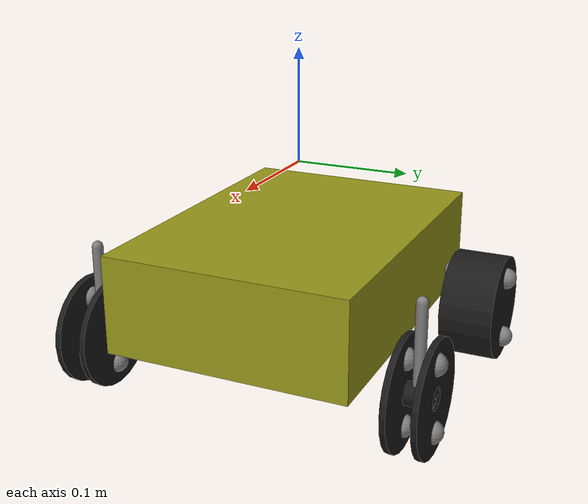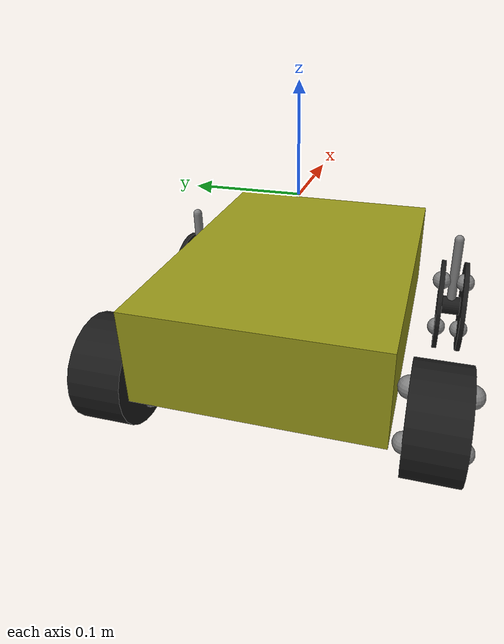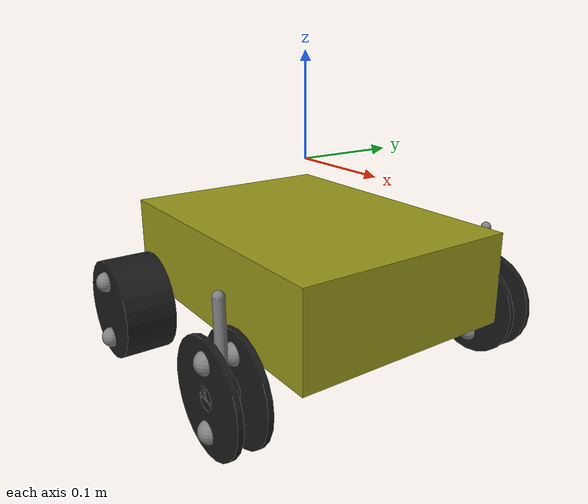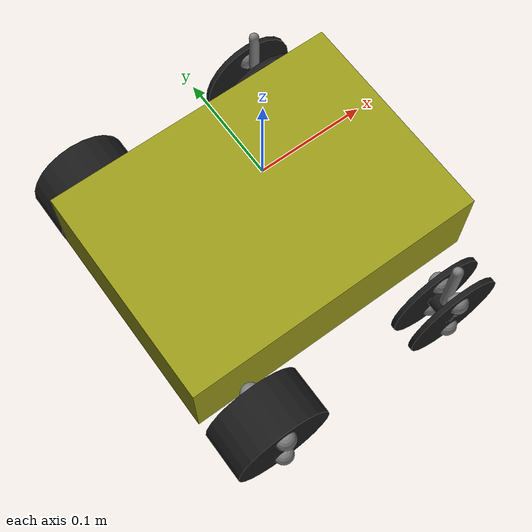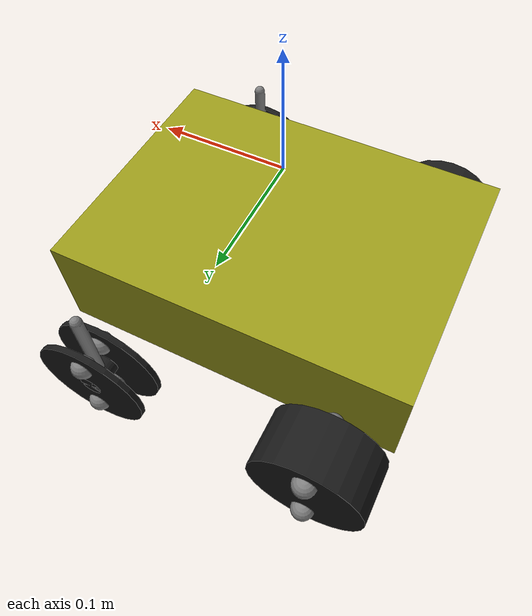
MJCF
<mujoco model="rover4We (v0.2)">

    <compiler inertiafromgeom="true" angle="degree"/>
	<option	timestep="0.02" gravity="0 0 -9.81"/>

	<asset>
		<material name="MatWheel" specular="1" rgba=".1 .1 .1 1"/>
		<material name="MatBody" specular="1" rgba=".6 .6 .1 1"/>
	</asset>

	<default>
		<!--making every geom collidable. expect those that dont are default-->
		<geom contype="1" conaffinity="1"/>
	</default>

	<default class="acker_solver_param">
		<!--solver impedance and reference(?) for ackerman equality constraint-->
		<!--default solimp: "0.900 0.950 0.001"-->
		<!--default solref: "0.020 1.000"-->
		<!--solref: (timeconst, dampratio)
			b = 2 / (dmax * timeconst)
			k = d(r) / (dmax * dmax * timeconst * timeconst * dampratio * dampratio)
		-->
		<equality solimp="0.9950 0.9990 0.0001" solref="0.0100 0.7500"/>
	</default>

	<visual>
		<headlight active="1"/>
		<scale camera=".5"/>
		<map znear="0.001" zfar="1000"/>
	</visual>

    <worldbody>
		<body name="rover" pos="0 0 0">

			<light name="lamp" active="true" directional="true" cutoff="4" exponent="20" diffuse="1 1 1" specular="0 0 0" pos="0 0 2.5" dir="0 0 -1 "/>

			<joint name="centroid" type="free" pos="0 0 0"/>
            <geom name="rover-body" type="box" pos="0 0 -0.1" size="0.15 0.11 0.044" mass="12" material="MatBody"/>
            <body name="r-l-wheel" pos="-0.1 0.12 -0.15">
                <joint name="r-l-drive-hinge" type="hinge" pos="0 0 0" axis="0 1 0" damping="0.01" />
                <geom type="cylinder" size=".05" fromto="0 0 0 0 0.05 0" mass=".125" material="MatWheel" condim="4"/>
				<site size=".01" pos="0 .05 .03"/>
				<site size=".01" pos="0 .05 -.03"/>
				<site size=".01" pos="0 0 .03"/>
				<site size=".01" pos="0 0 -.03"/>
            </body>
            <body name="r-r-wheel" pos="-0.1 -0.12 -0.15">
                <joint name="r-r-drive-hinge" type="hinge" pos="0 0 0" axis="0 1 0" damping="0.01"/>
                <geom type="cylinder" size=".05" fromto="0 0 0 0 -0.05 0" mass=".125" material="MatWheel" condim="4"/>
				<site size=".01" pos="0 -.05 .03"/>
				<site size=".01" pos="0 -.05 -.03"/>
				<site size=".01" pos="0 0 .03"/>
				<site size=".01" pos="0 0 -.03"/>
            </body>
			<body name="ghost-steer-wheel" pos="0 0 -0.1">
                <joint name="ghost-steer-hinge" type="hinge" pos="0 0 0" axis="0 0 1" limited="true" range="-17 17" damping="0"/>
				<geom type="cylinder" size=".01 .01" axisangle="1 0 0 90" contype="2" conaffinity="2" mass="0.002"/>
			</body>
			<body name="f-l-wheel" pos=".1 0.15 -.15">
				<geom type="capsule" size = ".005" fromto="0 0 0 0 0 .08" contype="2" conaffinity="2"/>
				<joint name="f-l-steer-hinge" type="hinge" pos="0 0 0" axis="0 0 1" damping="0.01" limited="true" range="-40 40"/>
				<body>
					<geom type="cylinder" size=".01" fromto="0 -.015 0 0 0.015 0" mass=".125" material="MatWheel"/>
					<body>
						<joint name="f-l-drive-hinge-1" type="hinge" pos="0 0 0" axis="0 1 0" damping="0.01"/>
						<geom type="cylinder" size=".05" fromto="0 -.015 0 0 -0.010 0" mass=".125" material="MatWheel" condim="4"/>
					<site size=".01" pos="0 -0.0125  0.03"/>
					<site size=".01" pos="0 -0.0125 -0.03"/>
					</body>
					<body>
						<joint name="f-l-drive-hinge-2" type="hinge" pos="0 0 0" axis="0 1 0" damping="0.01"/>
						<geom type="cylinder" size=".05" fromto="0 .010 0 0 0.015 0" mass=".125" material="MatWheel" condim="4"/>
						<site size=".01" pos="0  0.0125  0.03"/>
						<site size=".01" pos="0  0.0125 -0.03"/>
					</body>
				</body>
			</body>
			<body name="f-r-wheel" pos=".1 -0.15 -.15">
				<geom type="capsule" size = ".005" fromto="0 0 0 0 0 .08" contype="2" conaffinity="2"/>
				<joint name="f-r-steer-hinge" type="hinge" pos="0 0 0" axis="0 0 1" damping="0.01" limited="true" range="-40 40"/>

				<body>
					<geom type="cylinder" size=".01" fromto="0 -.015 0 0 0.015 0" mass=".125" material="MatWheel"/>
					<body>
						<joint name="f-l-drive-hinge-3" type="hinge" pos="0 0 0" axis="0 1 0" damping="0.01"/>
						<geom type="cylinder" size=".05" fromto="0 -.015 0 0 -0.010 0" mass=".125" material="MatWheel" condim="4"/>
					<site size=".01" pos="0 -0.0125  0.03"/>
					<site size=".01" pos="0 -0.0125 -0.03"/>
					</body>
					<body>
						<joint name="f-l-drive-hinge-4" type="hinge" pos="0 0 0" axis="0 1 0" damping="0.01"/>
						<geom type="cylinder" size=".05" fromto="0 .010 0 0 0.015 0" mass=".125" material="MatWheel" condim="4"/>
						<site size=".01" pos="0  0.0125  0.03"/>
						<site size=".01" pos="0  0.0125 -0.03"/>
					</body>
				</body>
			</body>

        </body>
    </worldbody>

	<tendon>
		<fixed name="rear-differential">
			<joint joint="r-l-drive-hinge" coef="1"/>
			<joint joint="r-r-drive-hinge" coef="1"/>
		</fixed>
	</tendon>

    <actuator>
        <position name="ghost-steer" joint="ghost-steer-hinge" ctrllimited="true" ctrlrange="-.29 .29" gear="1"/>
        <motor name="drive" tendon="rear-differential" ctrllimited="true" ctrlrange="-0.05 0.05" gear="1.5"/>
    </actuator>
	<!--
		joint1: y
		joint2: x
		polycoef: a0 a1 a2 a3 a4
		y-y0 = a0 + a1*(x-x0) + a2*(x-x0)^2 + a3*(x-x0)^3 + a4*(x-x0)^4
	-->
	<equality>
		<joint name="f-l-steer-hinge" joint1="f-l-steer-hinge" joint2="ghost-steer-hinge" polycoef="0.000093610018132620019 2.0041497325730204 1.4716131190668178 -1.0929725380842041 -3.2252012765547819" class="acker_solver_param"/>
		<joint name="f-r-steer-hinge" joint1="f-r-steer-hinge" joint2="ghost-steer-hinge" polycoef="-0.00017013070152971507 2.0039379507086514 -1.4684576386267671 -1.0901354124362155 3.1974185558159771" class="acker_solver_param"/>
	</equality>

</mujoco>
